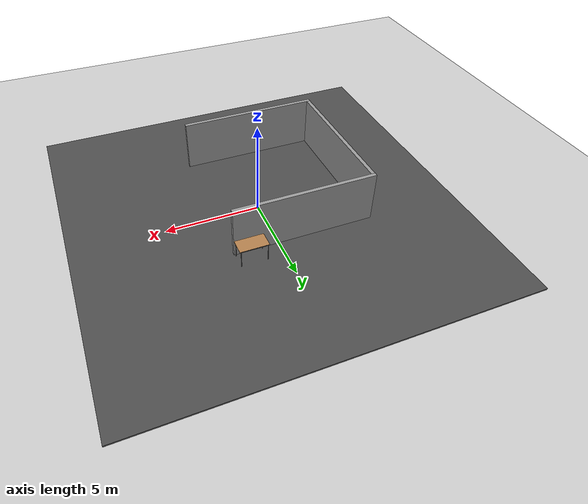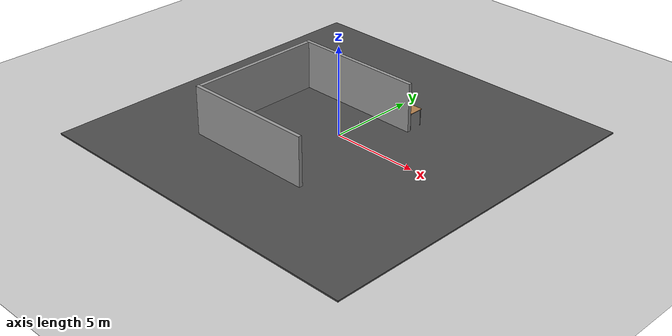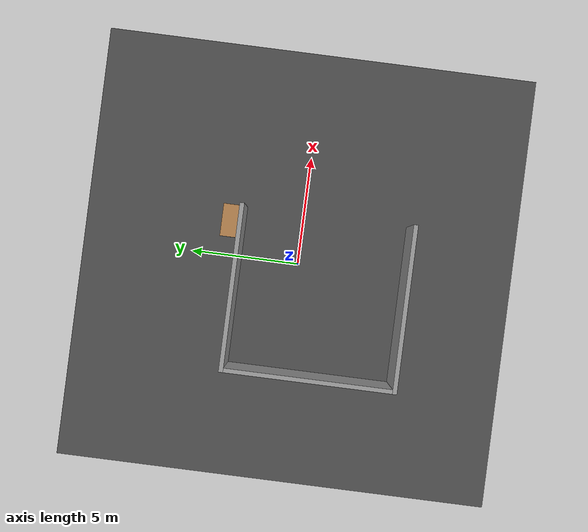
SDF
<sdf version="1.6">
 <world name="default">
  <light name="sun" type="directional">
   <pose>0 0 10 0 -0 0</pose>
   <diffuse>0.8 0.8 0.8 1</diffuse>
   <specular>0.2 0.2 0.2 1</specular>
   <attenuation>
    <range>1000</range>
    <constant>0.9</constant>
    <linear>0.01</linear>
    <quadratic>0.001</quadratic>
   </attenuation>
   <direction>-0.5 0.1 -0.9</direction>
  </light>
  <model name="ground_plane">
   <static>1</static>
   <link name="link">
    <collision name="collision">
     <geometry><plane><normal>0 0 1</normal><size>100 100</size></plane></geometry>
     <surface>
      <contact><collide_bitmask>65535</collide_bitmask></contact>
      <friction><ode><mu>100</mu><mu2>50</mu2></ode></friction>
     </surface>
    </collision>
    <visual name="visual">
     <cast_shadows>0</cast_shadows>
     <geometry><plane><normal>0 0 1</normal><size>100 100</size></plane></geometry>
     <material>
      <script><uri>file://media/materials/scripts/gazebo.material</uri><name>Gazebo/Grey</name></script>
     </material>
    </visual>
   </link>
  </model>
  <gravity>0 0 -9.8</gravity>
  <magnetic_field>6e-06 2.3e-05 -4.2e-05</magnetic_field>
  <atmosphere type="adiabatic"/>
  <physics name="default_physics" default="0" type="ode">
   <max_step_size>0.001</max_step_size>
   <real_time_factor>1</real_time_factor>
   <real_time_update_rate>1000</real_time_update_rate>
  </physics>
  <scene><ambient>0.4 0.4 0.4 1</ambient><background>0.7 0.7 0.7 1</background><shadows>1</shadows></scene>
  <audio><device>default</device></audio>
  <spherical_coordinates>
   <surface_model>EARTH_WGS84</surface_model>
   <latitude_deg>0</latitude_deg>
   <longitude_deg>0</longitude_deg>
   <elevation>0</elevation>
   <heading_deg>0</heading_deg>
  </spherical_coordinates>
  <model name="beer">
   <link name="link">
    <pose>0 0 0.115 0 -0 0</pose>
    <inertial>
     <mass>0.39</mass>
     <inertia><ixx>0.00058</ixx><ixy>0</ixy><ixz>0</ixz><iyy>0.00058</iyy><iyz>0</iyz><izz>0.00019</izz></inertia>
    </inertial>
    <collision name="collision">
     <geometry><cylinder><radius>0.055</radius><length>0.23</length></cylinder></geometry>
    </collision>
    <visual name="visual">
     <geometry><cylinder><radius>0.055</radius><length>0.23</length></cylinder></geometry>
     <material>
      <script>
       <uri>model://beer/materials/scripts</uri>
       <uri>model://beer/materials/textures</uri>
       <name>Beer/Diffuse</name>
      </script>
     </material>
    </visual>
   </link>
   <pose>0.06819 1.47836 0.050286 2.3e-05 9.6e-05 0.000407</pose>
  </model>
  <model name="table">
   <static>1</static>
   <link name="link">
    <collision name="surface">
     <pose>0 0 1 0 -0 0</pose>
     <geometry><box><size>1.5 0.8 0.03</size></box></geometry>
     <surface><friction><ode><mu>0.6</mu><mu2>0.6</mu2></ode></friction></surface>
    </collision>
    <visual name="visual1">
     <pose>0 0 1 0 -0 0</pose>
     <geometry><box><size>1.5 0.8 0.03</size></box></geometry>
     <material>
      <script><uri>file://media/materials/scripts/gazebo.material</uri><name>Gazebo/Wood</name></script>
     </material>
    </visual>
    <collision name="front_left_leg">
     <pose>0.68 0.38 0.5 0 -0 0</pose>
     <geometry><cylinder><radius>0.02</radius><length>1</length></cylinder></geometry>
    </collision>
    <visual name="front_left_leg">
     <pose>0.68 0.38 0.5 0 -0 0</pose>
     <geometry><cylinder><radius>0.02</radius><length>1</length></cylinder></geometry>
     <material>
      <script><uri>file://media/materials/scripts/gazebo.material</uri><name>Gazebo/Grey</name></script>
     </material>
    </visual>
    <collision name="front_right_leg">
     <pose>0.68 -0.38 0.5 0 -0 0</pose>
     <geometry><cylinder><radius>0.02</radius><length>1</length></cylinder></geometry>
    </collision>
    <visual name="front_right_leg">
     <pose>0.68 -0.38 0.5 0 -0 0</pose>
     <geometry><cylinder><radius>0.02</radius><length>1</length></cylinder></geometry>
     <material>
      <script><uri>file://media/materials/scripts/gazebo.material</uri><name>Gazebo/Grey</name></script>
     </material>
    </visual>
    <collision name="back_right_leg">
     <pose>-0.68 -0.38 0.5 0 -0 0</pose>
     <geometry><cylinder><radius>0.02</radius><length>1</length></cylinder></geometry>
    </collision>
    <visual name="back_right_leg">
     <pose>-0.68 -0.38 0.5 0 -0 0</pose>
     <geometry><cylinder><radius>0.02</radius><length>1</length></cylinder></geometry>
     <material>
      <script><uri>file://media/materials/scripts/gazebo.material</uri><name>Gazebo/Grey</name></script>
     </material>
    </visual>
    <collision name="back_left_leg">
     <pose>-0.68 0.38 0.5 0 -0 0</pose>
     <geometry><cylinder><radius>0.02</radius><length>1</length></cylinder></geometry>
    </collision>
    <visual name="back_left_leg">
     <pose>-0.68 0.38 0.5 0 -0 0</pose>
     <geometry><cylinder><radius>0.02</radius><length>1</length></cylinder></geometry>
     <material>
      <script><uri>file://media/materials/scripts/gazebo.material</uri><name>Gazebo/Grey</name></script>
     </material>
    </visual>
   </link>
   <pose>1.59612 3.32657 0 0 -0 0</pose>
  </model>
  <model name="grey_wall">
   <static>1</static>
   <link name="link">
    <pose>0 0 1.4 0 -0 0</pose>
    <collision name="collision"><geometry><box><size>7.5 0.2 2.8</size></box></geometry></collision>
    <visual name="visual">
     <cast_shadows>0</cast_shadows>
     <geometry><box><size>7.5 0.2 2.8</size></box></geometry>
     <material>
      <script>
       <uri>model://grey_wall/materials/scripts</uri>
       <uri>model://grey_wall/materials/textures</uri>
       <name>vrc/grey_wall</name>
      </script>
     </material>
    </visual>
   </link>
   <pose>-1.39276 -4.92227 0 0 -0 0</pose>
  </model>
  <model name="grey_wall_clone">
   <static>1</static>
   <link name="link">
    <pose>0 0 1.4 0 -0 0</pose>
    <collision name="collision"><geometry><box><size>7.5 0.2 2.8</size></box></geometry></collision>
    <visual name="visual">
     <cast_shadows>0</cast_shadows>
     <geometry><box><size>7.5 0.2 2.8</size></box></geometry>
     <material>
      <script>
       <uri>model://grey_wall/materials/scripts</uri>
       <uri>model://grey_wall/materials/textures</uri>
       <name>vrc/grey_wall</name>
      </script>
     </material>
    </visual>
   </link>
   <pose>-5.03975 -1.07676 0 0 0 -1.5708</pose>
  </model>
  <model name="grey_wall_clone_0">
   <static>1</static>
   <link name="link">
    <pose>0 0 1.4 0 -0 0</pose>
    <collision name="collision"><geometry><box><size>7.5 0.2 2.8</size></box></geometry></collision>
    <visual name="visual">
     <cast_shadows>0</cast_shadows>
     <geometry><box><size>7.5 0.2 2.8</size></box></geometry>
     <material>
      <script>
       <uri>model://grey_wall/materials/scripts</uri>
       <uri>model://grey_wall/materials/textures</uri>
       <name>vrc/grey_wall</name>
      </script>
     </material>
    </visual>
   </link>
   <pose>-1.39221 2.77086 0 0 -0 0</pose>
  </model>
  <model name="asphalt_plane2">
   <link name="link">
    <inertial>
     <inertia><ixx>0</ixx><ixy>0</ixy><ixz>0</ixz><iyy>0</iyy><iyz>0</iyz><izz>0</izz></inertia>
     <mass>0</mass>
    </inertial>
    <visual name="visual">
     <cast_shadows>0</cast_shadows>
     <geometry><box><size>20.1125 20.1125 0.100561</size></box></geometry>
     <material>
      <script>
       <uri>model://asphalt_plane/materials/scripts</uri>
       <uri>model://asphalt_plane/materials/textures</uri>
       <name>vrc/asphalt</name>
      </script>
     </material>
    </visual>
    <collision name="collision">
     <geometry><box><size>20.1125 20.1125 0.100561</size></box></geometry>
     <surface>
      <friction>
       <ode><mu>1</mu><mu2>1</mu2><fdir1>0 0 0</fdir1><slip1>0</slip1><slip2>0</slip2></ode>
       <torsional>
        <coefficient>1</coefficient>
        <patch_radius>0</patch_radius>
        <surface_radius>0</surface_radius>
        <use_patch_radius>1</use_patch_radius>
        <ode><slip>0</slip></ode>
       </torsional>
      </friction>
      <bounce><restitution_coefficient>0</restitution_coefficient><threshold>1e+06</threshold></bounce>
      <contact>
       <collide_without_contact>0</collide_without_contact>
       <collide_without_contact_bitmask>1</collide_without_contact_bitmask>
       <collide_bitmask>1</collide_bitmask>
       <ode>
        <soft_cfm>0</soft_cfm>
        <soft_erp>0.2</soft_erp>
        <kp>1e+13</kp>
        <kd>1</kd>
        <max_vel>0.01</max_vel>
        <min_depth>0</min_depth>
       </ode>
       <bullet>
        <split_impulse>1</split_impulse>
        <split_impulse_penetration_threshold>-0.01</split_impulse_penetration_threshold>
        <soft_cfm>0</soft_cfm>
        <soft_erp>0.2</soft_erp>
        <kp>1e+13</kp>
        <kd>1</kd>
       </bullet>
      </contact>
     </surface>
    </collision>
   </link>
   <static>1</static>
   <pose>-0.166499 0.051074 0 0 -0 0</pose>
  </model>
 </world>
</sdf>
